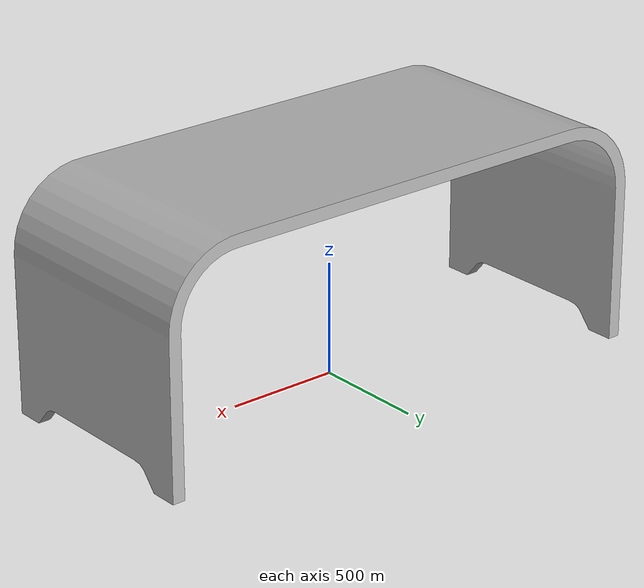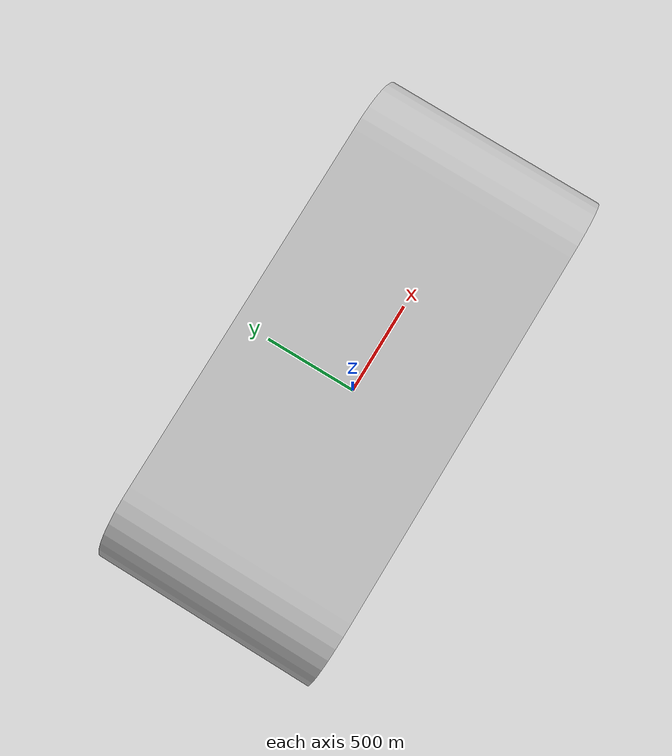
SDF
<?xml version="1.0" ?>
<sdf version="1.5">
  <model name="Desk">
    <link name="link">
      <pose>0 0 0 0 0 0</pose>

        <visual name="visual">
          <geometry>
            <mesh>
              <uri>model://Desk/meshes/desk.obj</uri>
              <scale>1.5 1.5 1.5</scale>
              </mesh>
          </geometry>
        </visual>

        <collision name="collision">
          <geometry>
            <mesh>
              <uri>model://Desk/meshes/desk.obj</uri>
              <scale>1.5 1.5 1.5</scale>
            </mesh>
          </geometry>
        </collision>

    </link>
  </model>
</sdf>
